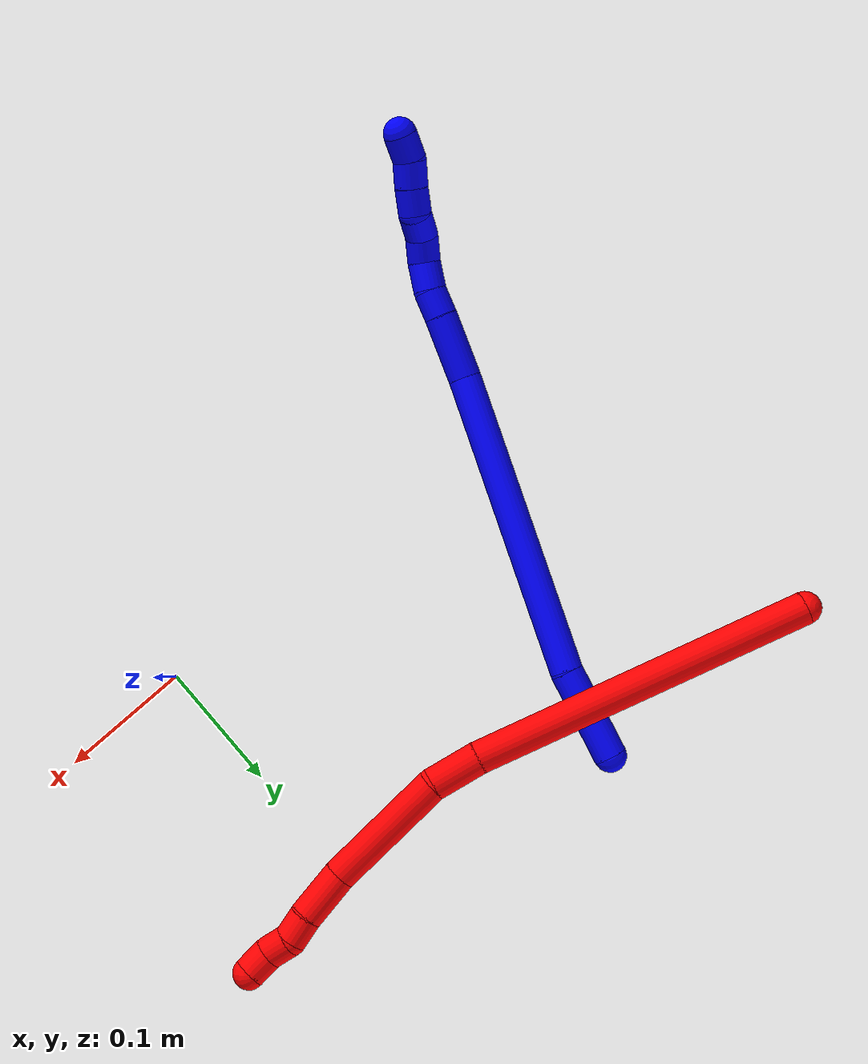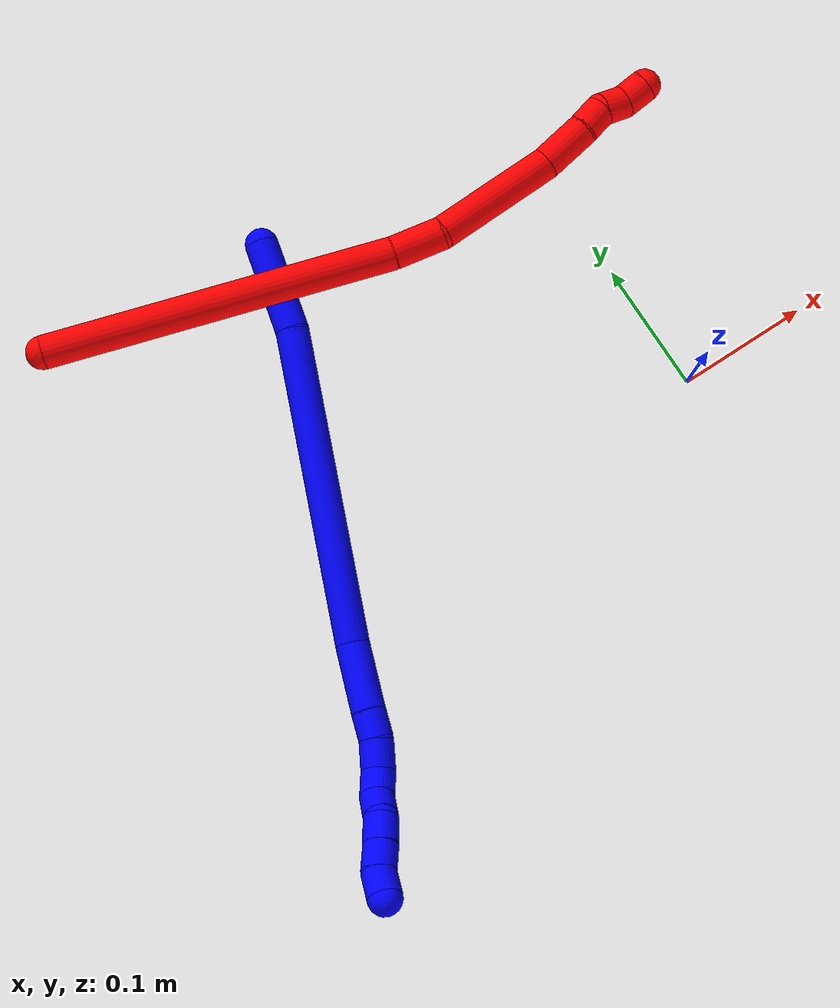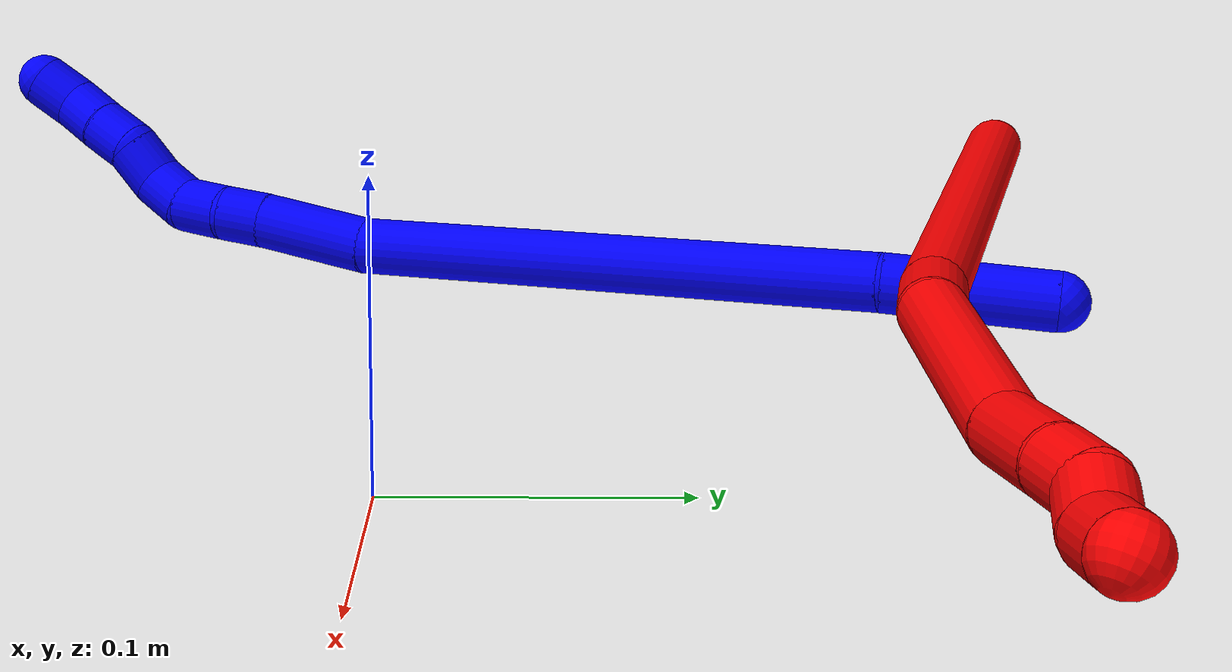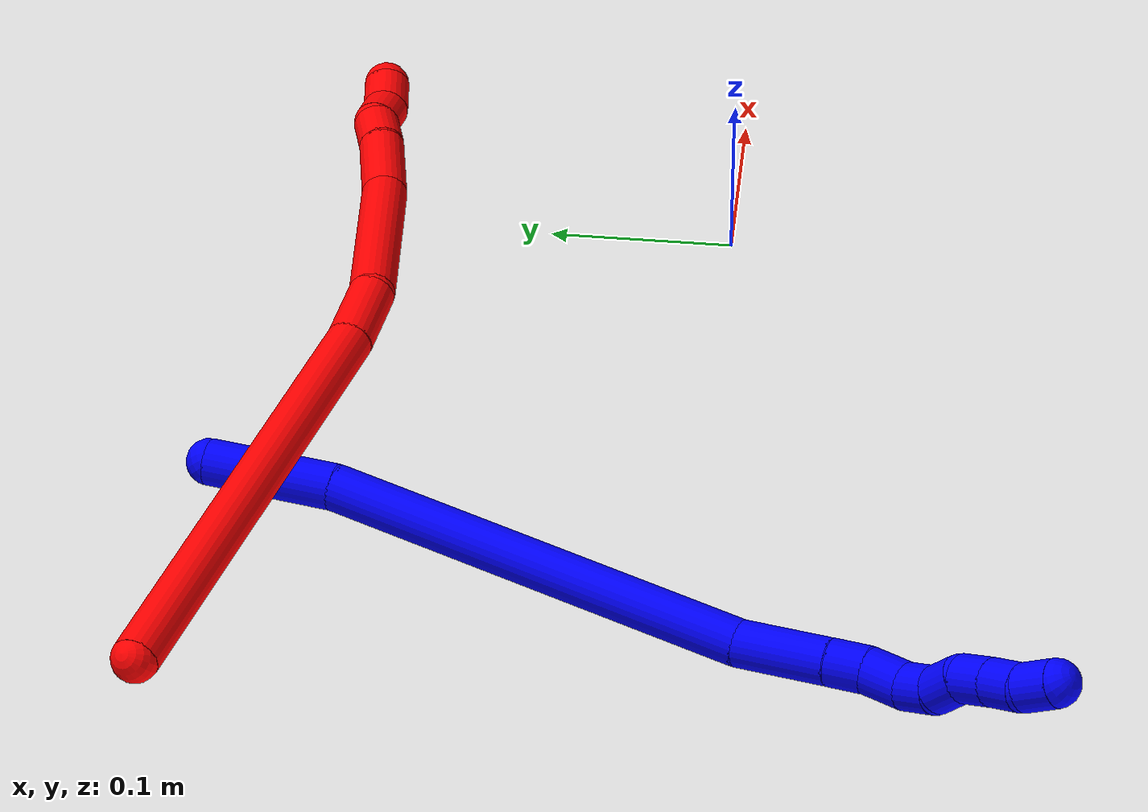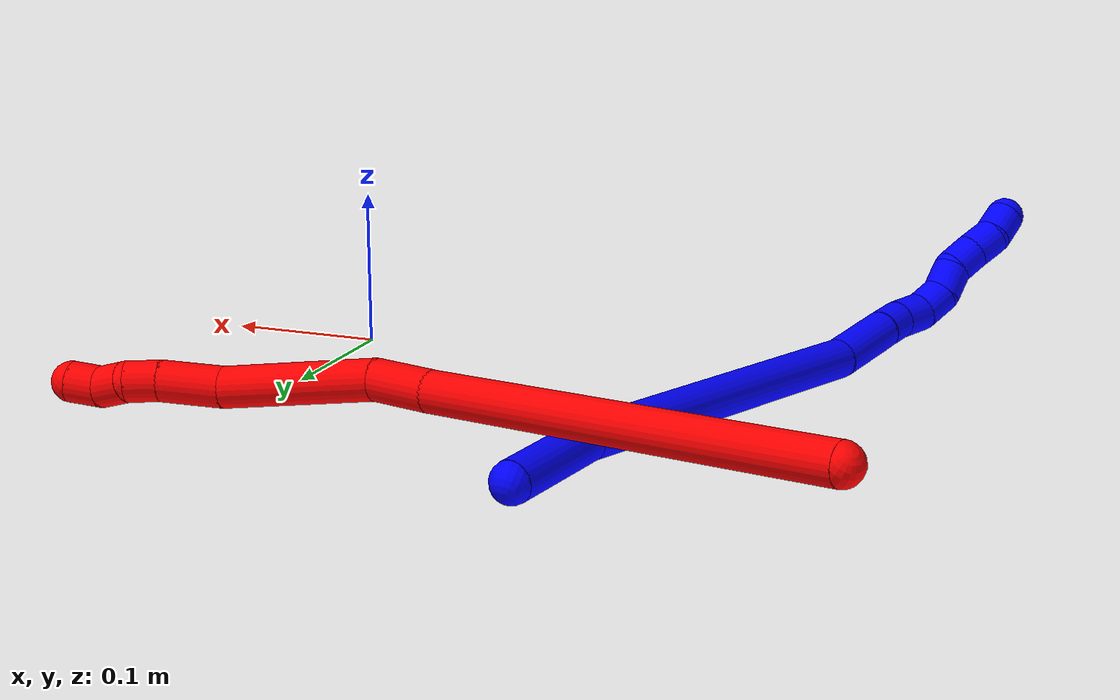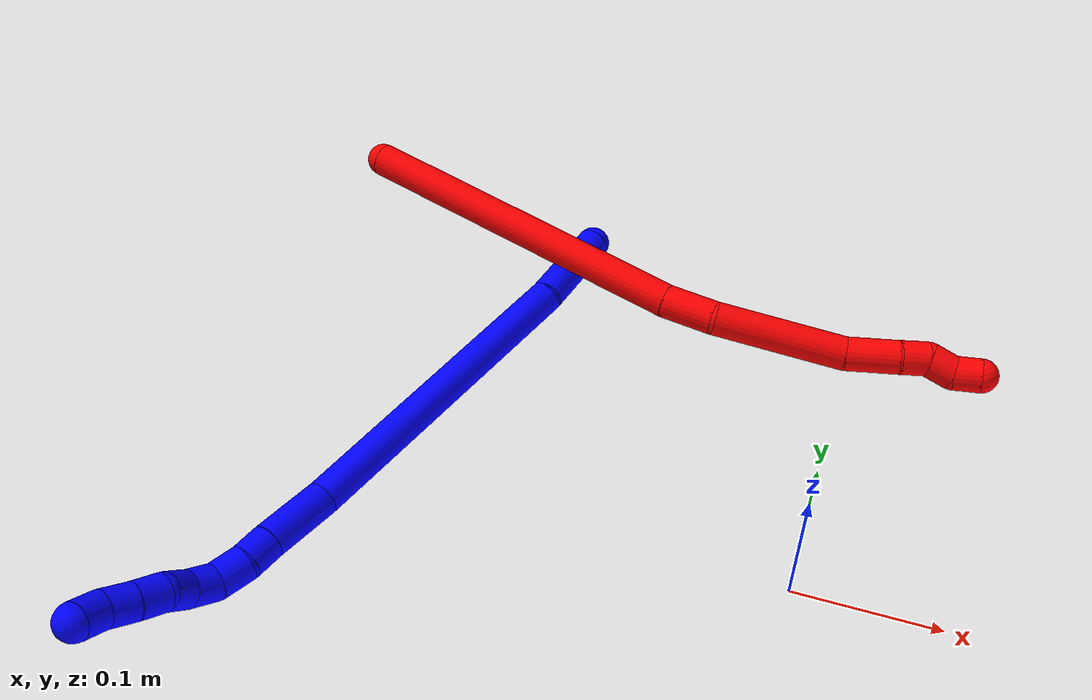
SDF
<sdf version="1.7">
 <world name="default">
  <plugin name="TubeGeneratorPlugin" filename="libtube_generator_plugin.so"/>
  <model name="photoneo_s_sensor">
   <static>1</static>
   <pose>0 0 2 1.57079 1.57079 3.14159</pose>
   <link name="link">
    <inertial><mass>0.1</mass></inertial>
    <sensor name="sensor" type="depth">
     <update_rate>30</update_rate>
     <camera>
      <horizontal_fov>1.22</horizontal_fov>
      <image><width>1920</width><height>1200</height><format>B8G8R8</format></image>
      <clip><near>0.1</near><far>4</far></clip>
      <depth_camera><output>points</output></depth_camera>
     </camera>
     <plugin name="camera_plugin" filename="libgazebo_ros_depth_camera.so">
      <baseline>0.2</baseline>
      <alwaysOn>1</alwaysOn>
      <updateRate>0.0</updateRate>
      <cameraName>camera_ir</cameraName>
      <imageTopicName>/camera/color/image_raw</imageTopicName>
      <cameraInfoTopicName>/camera/color/camera_info</cameraInfoTopicName>
      <depthImageTopicName>/camera/depth/image_raw</depthImageTopicName>
      <depthImageCameraInfoTopicName>/camera/depth/camera_info</depthImageCameraInfoTopicName>
      <pointCloudTopicName>/camera/depth/points</pointCloudTopicName>
      <frameName>fr_optical</frameName>
      <pointCloudCutoff>0.1</pointCloudCutoff>
      <pointCloudCutoffMax>2.0</pointCloudCutoffMax>
      <distortionK1>0</distortionK1>
      <distortionK2>0</distortionK2>
      <distortionK3>0</distortionK3>
      <distortionT1>0</distortionT1>
      <distortionT2>0</distortionT2>
      <CxPrime>0</CxPrime>
      <Cx>0</Cx>
      <Cy>0</Cy>
      <focalLength>0</focalLength>
      <hackBaseline>0</hackBaseline>
     </plugin>
    </sensor>
   </link>
  </model>
  <gravity>0 0 -9.8</gravity>
  <magnetic_field>6e-06 2.3e-05 -4.2e-05</magnetic_field>
  <atmosphere type="adiabatic"/>
  <physics name="default_physics" default="0" type="ode">
   <max_step_size>0.003</max_step_size>
   <real_time_factor>1</real_time_factor>
   <real_time_update_rate>1000</real_time_update_rate>
   <max_contacts>10000</max_contacts>
   <ode>
    <solver>
     <type>quick</type>
     <iters>100</iters>
     <sor>1.3</sor>
     <use_dynamic_moi_rescaling>0</use_dynamic_moi_rescaling>
    </solver>
    <constraints>
     <contact_max_correcting_vel>0</contact_max_correcting_vel>
     <contact_surface_layer>0.001</contact_surface_layer>
     <cfm>0</cfm>
     <erp>0.2</erp>
    </constraints>
   </ode>
  </physics>
  <scene><ambient>0.4 0.4 0.4 1</ambient><background>0.7 0.7 0.7 1</background><shadows>0</shadows></scene>
  <audio><device>default</device></audio>
  <spherical_coordinates>
   <surface_model>EARTH_WGS84</surface_model>
   <latitude_deg>0</latitude_deg>
   <longitude_deg>0</longitude_deg>
   <elevation>0</elevation>
   <heading_deg>0</heading_deg>
  </spherical_coordinates>
  <model name="bin">
   <static>1</static>
   <link name="bottom">
    <collision name="collision-bottom">
     <pose>0 0 -0.01 0 -0 0</pose>
     <geometry><box><size>0.8 0.6 0.02</size></box></geometry>
     <surface>
      <friction><ode><mu>100</mu><mu2>100</mu2></ode></friction>
      <contact><collide_bitmask>65535</collide_bitmask></contact>
     </surface>
    </collision>
   </link>
   <link name="west_wall">
    <collision name="collision-west_wall">
     <pose>-0.41 0 0.1 0 -0 0</pose>
     <geometry><box><size>0.02 0.6 0.2</size></box></geometry>
     <surface>
      <friction><ode><mu>100</mu><mu2>100</mu2></ode></friction>
      <contact><collide_bitmask>65535</collide_bitmask></contact>
     </surface>
    </collision>
   </link>
   <link name="east_wall">
    <collision name="collision-east_wall">
     <pose>0.41 0 0.1 0 -0 0</pose>
     <geometry><box><size>0.02 0.6 0.2</size></box></geometry>
     <surface>
      <friction><ode><mu>100</mu><mu2>100</mu2></ode></friction>
      <contact><collide_bitmask>65535</collide_bitmask></contact>
     </surface>
    </collision>
   </link>
   <link name="south_wall">
    <collision name="collision-south_wall">
     <pose>0 -0.31 0.1 0 -0 0</pose>
     <geometry><box><size>0.8 0.02 0.2</size></box></geometry>
     <surface>
      <friction><ode><mu>100</mu><mu2>100</mu2></ode></friction>
      <contact><collide_bitmask>65535</collide_bitmask></contact>
     </surface>
    </collision>
   </link>
   <link name="north_wall">
    <collision name="collision-north_wall">
     <pose>0 0.31 0.1 0 -0 0</pose>
     <geometry><box><size>0.8 0.02 0.2</size></box></geometry>
     <surface>
      <friction><ode><mu>100</mu><mu2>100</mu2></ode></friction>
      <contact><collide_bitmask>65535</collide_bitmask></contact>
     </surface>
    </collision>
   </link>
  </model>
  <model name="1">
   <static>0</static>
   <link name="1">
    <collision name="collision-cylinder-e_1_1_4">
     <pose>0.000786 -0.024437 -0.025788 2.38309 0.022121 0.055491</pose>
     <geometry><cylinder><radius>0.0125</radius><length>0.071072</length></cylinder></geometry>
     <surface>
      <friction><ode><mu>1.16</mu><mu2>1.16</mu2><slip1>0</slip1><slip2>0</slip2></ode></friction>
      <contact><ode><kp>1e+06</kp><kd>1</kd><max_vel>0</max_vel><min_depth>0.001</min_depth></ode></contact>
     </surface>
    </collision>
    <visual name="visual-cylinder-e_1_1_4">
     <pose>0.000786 -0.024437 -0.025788 2.38309 0.022121 0.055491</pose>
     <geometry><cylinder><radius>0.0125</radius><length>0.071072</length></cylinder></geometry>
     <material><ambient>0 0 1 1</ambient></material>
    </visual>
    <collision name="collision-cylinder-e_2_4_5">
     <pose>0.021204 -0.134877 -0.129325 2.30583 0.167741 0.374224</pose>
     <geometry><cylinder><radius>0.0125</radius><length>0.235175</length></cylinder></geometry>
     <surface>
      <friction><ode><mu>1.16</mu><mu2>1.16</mu2><slip1>0</slip1><slip2>0</slip2></ode></friction>
      <contact><ode><kp>1e+06</kp><kd>1</kd><max_vel>0</max_vel><min_depth>0.001</min_depth></ode></contact>
     </surface>
    </collision>
    <visual name="visual-cylinder-e_2_4_5">
     <pose>0.021204 -0.134877 -0.129325 2.30583 0.167741 0.374224</pose>
     <geometry><cylinder><radius>0.0125</radius><length>0.235175</length></cylinder></geometry>
     <material><ambient>0 0 1 1</ambient></material>
    </visual>
    <collision name="collision-cylinder-e_3_5_6">
     <pose>0.043987 -0.236104 -0.226917 2.48718 0.125336 0.365634</pose>
     <geometry><cylinder><radius>0.0125</radius><length>0.050417</length></cylinder></geometry>
     <surface>
      <friction><ode><mu>1.16</mu><mu2>1.16</mu2><slip1>0</slip1><slip2>0</slip2></ode></friction>
      <contact><ode><kp>1e+06</kp><kd>1</kd><max_vel>0</max_vel><min_depth>0.001</min_depth></ode></contact>
     </surface>
    </collision>
    <visual name="visual-cylinder-e_3_5_6">
     <pose>0.043987 -0.236104 -0.226917 2.48718 0.125336 0.365634</pose>
     <geometry><cylinder><radius>0.0125</radius><length>0.050417</length></cylinder></geometry>
     <material><ambient>0 0 1 1</ambient></material>
    </visual>
    <collision name="collision-cylinder-e_4_6_7">
     <pose>0.048046 -0.257872 -0.254559 2.44336 0.088951 0.243305</pose>
     <geometry><cylinder><radius>0.0125</radius><length>0.020442</length></cylinder></geometry>
     <surface>
      <friction><ode><mu>1.16</mu><mu2>1.16</mu2><slip1>0</slip1><slip2>0</slip2></ode></friction>
      <contact><ode><kp>1e+06</kp><kd>1</kd><max_vel>0</max_vel><min_depth>0.001</min_depth></ode></contact>
     </surface>
    </collision>
    <visual name="visual-cylinder-e_4_6_7">
     <pose>0.048046 -0.257872 -0.254559 2.44336 0.088951 0.243305</pose>
     <geometry><cylinder><radius>0.0125</radius><length>0.020442</length></cylinder></geometry>
     <material><ambient>0 0 1 1</ambient></material>
    </visual>
    <collision name="collision-cylinder-e_5_7_8">
     <pose>0.052239 -0.271746 -0.270371 2.40081 0.293779 0.728078</pose>
     <geometry><cylinder><radius>0.0125</radius><length>0.022691</length></cylinder></geometry>
     <surface>
      <friction><ode><mu>1.16</mu><mu2>1.16</mu2><slip1>0</slip1><slip2>0</slip2></ode></friction>
      <contact><ode><kp>1e+06</kp><kd>1</kd><max_vel>0</max_vel><min_depth>0.001</min_depth></ode></contact>
     </surface>
    </collision>
    <visual name="visual-cylinder-e_5_7_8">
     <pose>0.052239 -0.271746 -0.270371 2.40081 0.293779 0.728078</pose>
     <geometry><cylinder><radius>0.0125</radius><length>0.022691</length></cylinder></geometry>
     <material><ambient>0 0 1 1</ambient></material>
    </visual>
    <collision name="collision-cylinder-e_6_8_9">
     <pose>0.059128 -0.281945 -0.287337 2.83132 0.36595 1.73824</pose>
     <geometry><cylinder><radius>0.0125</radius><length>0.020136</length></cylinder></geometry>
     <surface>
      <friction><ode><mu>1.16</mu><mu2>1.16</mu2><slip1>0</slip1><slip2>0</slip2></ode></friction>
      <contact><ode><kp>1e+06</kp><kd>1</kd><max_vel>0</max_vel><min_depth>0.001</min_depth></ode></contact>
     </surface>
    </collision>
    <visual name="visual-cylinder-e_6_8_9">
     <pose>0.059128 -0.281945 -0.287337 2.83132 0.36595 1.73824</pose>
     <geometry><cylinder><radius>0.0125</radius><length>0.020136</length></cylinder></geometry>
     <material><ambient>0 0 1 1</ambient></material>
    </visual>
    <collision name="collision-cylinder-e_7_9_10">
     <pose>0.063939 -0.284505 -0.306234 -3.11041 0.120909 -2.63734</pose>
     <geometry><cylinder><radius>0.0125</radius><length>0.020045</length></cylinder></geometry>
     <surface>
      <friction><ode><mu>1.16</mu><mu2>1.16</mu2><slip1>0</slip1><slip2>0</slip2></ode></friction>
      <contact><ode><kp>1e+06</kp><kd>1</kd><max_vel>0</max_vel><min_depth>0.001</min_depth></ode></contact>
     </surface>
    </collision>
    <visual name="visual-cylinder-e_7_9_10">
     <pose>0.063939 -0.284505 -0.306234 -3.11041 0.120909 -2.63734</pose>
     <geometry><cylinder><radius>0.0125</radius><length>0.020045</length></cylinder></geometry>
     <material><ambient>0 0 1 1</ambient></material>
    </visual>
    <collision name="collision-cylinder-e_8_10_11">
     <pose>0.068379 -0.287382 -0.325095 2.79827 0.328817 1.52683</pose>
     <geometry><cylinder><radius>0.0125</radius><length>0.02001</length></cylinder></geometry>
     <surface>
      <friction><ode><mu>1.16</mu><mu2>1.16</mu2><slip1>0</slip1><slip2>0</slip2></ode></friction>
      <contact><ode><kp>1e+06</kp><kd>1</kd><max_vel>0</max_vel><min_depth>0.001</min_depth></ode></contact>
     </surface>
    </collision>
    <visual name="visual-cylinder-e_8_10_11">
     <pose>0.068379 -0.287382 -0.325095 2.79827 0.328817 1.52683</pose>
     <geometry><cylinder><radius>0.0125</radius><length>0.02001</length></cylinder></geometry>
     <material><ambient>0 0 1 1</ambient></material>
    </visual>
    <collision name="collision-cylinder-e_9_11_12">
     <pose>0.075518 -0.293579 -0.342717 2.80884 0.401319 1.76126</pose>
     <geometry><cylinder><radius>0.0125</radius><length>0.020012</length></cylinder></geometry>
     <surface>
      <friction><ode><mu>1.16</mu><mu2>1.16</mu2><slip1>0</slip1><slip2>0</slip2></ode></friction>
      <contact><ode><kp>1e+06</kp><kd>1</kd><max_vel>0</max_vel><min_depth>0.001</min_depth></ode></contact>
     </surface>
    </collision>
    <visual name="visual-cylinder-e_9_11_12">
     <pose>0.075518 -0.293579 -0.342717 2.80884 0.401319 1.76126</pose>
     <geometry><cylinder><radius>0.0125</radius><length>0.020012</length></cylinder></geometry>
     <material><ambient>0 0 1 1</ambient></material>
    </visual>
    <collision name="collision-cylinder-e_10_12_2">
     <pose>0.080423 -0.299172 -0.361031 2.87885 0.099741 0.72234</pose>
     <geometry><cylinder><radius>0.0125</radius><length>0.02</length></cylinder></geometry>
     <surface>
      <friction><ode><mu>1.16</mu><mu2>1.16</mu2><slip1>0</slip1><slip2>0</slip2></ode></friction>
      <contact><ode><kp>1e+06</kp><kd>1</kd><max_vel>0</max_vel><min_depth>0.001</min_depth></ode></contact>
     </surface>
    </collision>
    <visual name="visual-cylinder-e_10_12_2">
     <pose>0.080423 -0.299172 -0.361031 2.87885 0.099741 0.72234</pose>
     <geometry><cylinder><radius>0.0125</radius><length>0.02</length></cylinder></geometry>
     <material><ambient>0 0 1 1</ambient></material>
    </visual>
    <collision name="collision-sphere-2">
     <pose>0.081419 -0.301756 -0.37064 0 -0 0</pose>
     <geometry><sphere><radius>0.0125</radius></sphere></geometry>
     <surface>
      <friction><ode><mu>1.16</mu><mu2>1.16</mu2><slip1>0</slip1><slip2>0</slip2></ode></friction>
      <contact><ode><kp>1e+06</kp><kd>1</kd><max_vel>0</max_vel><min_depth>0.001</min_depth></ode></contact>
     </surface>
    </collision>
    <visual name="visual-sphere-2">
     <pose>0.081419 -0.301756 -0.37064 0 -0 0</pose>
     <geometry><sphere><radius>0.0125</radius></sphere></geometry>
     <material><ambient>0 0 1 1</ambient></material>
    </visual>
    <collision name="collision-sphere-12">
     <pose>0.079427 -0.296587 -0.351422 0 -0 0</pose>
     <geometry><sphere><radius>0.0125</radius></sphere></geometry>
     <surface>
      <friction><ode><mu>1.16</mu><mu2>1.16</mu2><slip1>0</slip1><slip2>0</slip2></ode></friction>
      <contact><ode><kp>1e+06</kp><kd>1</kd><max_vel>0</max_vel><min_depth>0.001</min_depth></ode></contact>
     </surface>
    </collision>
    <visual name="visual-sphere-12">
     <pose>0.079427 -0.296587 -0.351422 0 -0 0</pose>
     <geometry><sphere><radius>0.0125</radius></sphere></geometry>
     <material><ambient>0 0 1 1</ambient></material>
    </visual>
    <collision name="collision-sphere-11">
     <pose>0.07161 -0.29057 -0.334011 0 -0 0</pose>
     <geometry><sphere><radius>0.0125</radius></sphere></geometry>
     <surface>
      <friction><ode><mu>1.16</mu><mu2>1.16</mu2><slip1>0</slip1><slip2>0</slip2></ode></friction>
      <contact><ode><kp>1e+06</kp><kd>1</kd><max_vel>0</max_vel><min_depth>0.001</min_depth></ode></contact>
     </surface>
    </collision>
    <visual name="visual-sphere-11">
     <pose>0.07161 -0.29057 -0.334011 0 -0 0</pose>
     <geometry><sphere><radius>0.0125</radius></sphere></geometry>
     <material><ambient>0 0 1 1</ambient></material>
    </visual>
    <collision name="collision-sphere-10">
     <pose>0.065148 -0.284195 -0.316178 0 -0 0</pose>
     <geometry><sphere><radius>0.0125</radius></sphere></geometry>
     <surface>
      <friction><ode><mu>1.16</mu><mu2>1.16</mu2><slip1>0</slip1><slip2>0</slip2></ode></friction>
      <contact><ode><kp>1e+06</kp><kd>1</kd><max_vel>0</max_vel><min_depth>0.001</min_depth></ode></contact>
     </surface>
    </collision>
    <visual name="visual-sphere-10">
     <pose>0.065148 -0.284195 -0.316178 0 -0 0</pose>
     <geometry><sphere><radius>0.0125</radius></sphere></geometry>
     <material><ambient>0 0 1 1</ambient></material>
    </visual>
    <collision name="collision-sphere-9">
     <pose>0.06273 -0.284815 -0.296289 0 -0 0</pose>
     <geometry><sphere><radius>0.0125</radius></sphere></geometry>
     <surface>
      <friction><ode><mu>1.16</mu><mu2>1.16</mu2><slip1>0</slip1><slip2>0</slip2></ode></friction>
      <contact><ode><kp>1e+06</kp><kd>1</kd><max_vel>0</max_vel><min_depth>0.001</min_depth></ode></contact>
     </surface>
    </collision>
    <visual name="visual-sphere-9">
     <pose>0.06273 -0.284815 -0.296289 0 -0 0</pose>
     <geometry><sphere><radius>0.0125</radius></sphere></geometry>
     <material><ambient>0 0 1 1</ambient></material>
    </visual>
    <collision name="collision-sphere-4">
     <pose>0.001572 -0.048874 -0.051576 0 -0 0</pose>
     <geometry><sphere><radius>0.0125</radius></sphere></geometry>
     <surface>
      <friction><ode><mu>1.16</mu><mu2>1.16</mu2><slip1>0</slip1><slip2>0</slip2></ode></friction>
      <contact><ode><kp>1e+06</kp><kd>1</kd><max_vel>0</max_vel><min_depth>0.001</min_depth></ode></contact>
     </surface>
    </collision>
    <visual name="visual-sphere-4">
     <pose>0.001572 -0.048874 -0.051576 0 -0 0</pose>
     <geometry><sphere><radius>0.0125</radius></sphere></geometry>
     <material><ambient>0 0 1 1</ambient></material>
    </visual>
    <collision name="collision-sphere-1">
     <geometry><sphere><radius>0.0125</radius></sphere></geometry>
     <surface>
      <friction><ode><mu>1.16</mu><mu2>1.16</mu2><slip1>0</slip1><slip2>0</slip2></ode></friction>
      <contact><ode><kp>1e+06</kp><kd>1</kd><max_vel>0</max_vel><min_depth>0.001</min_depth></ode></contact>
     </surface>
    </collision>
    <visual name="visual-sphere-1">
     <geometry><sphere><radius>0.0125</radius></sphere></geometry>
     <material><ambient>0 0 1 1</ambient></material>
    </visual>
    <collision name="collision-sphere-8">
     <pose>0.055525 -0.279075 -0.278384 0 -0 0</pose>
     <geometry><sphere><radius>0.0125</radius></sphere></geometry>
     <surface>
      <friction><ode><mu>1.16</mu><mu2>1.16</mu2><slip1>0</slip1><slip2>0</slip2></ode></friction>
      <contact><ode><kp>1e+06</kp><kd>1</kd><max_vel>0</max_vel><min_depth>0.001</min_depth></ode></contact>
     </surface>
    </collision>
    <visual name="visual-sphere-8">
     <pose>0.055525 -0.279075 -0.278384 0 -0 0</pose>
     <geometry><sphere><radius>0.0125</radius></sphere></geometry>
     <material><ambient>0 0 1 1</ambient></material>
    </visual>
    <collision name="collision-sphere-5">
     <pose>0.040836 -0.22088 -0.207074 0 -0 0</pose>
     <geometry><sphere><radius>0.0125</radius></sphere></geometry>
     <surface>
      <friction><ode><mu>1.16</mu><mu2>1.16</mu2><slip1>0</slip1><slip2>0</slip2></ode></friction>
      <contact><ode><kp>1e+06</kp><kd>1</kd><max_vel>0</max_vel><min_depth>0.001</min_depth></ode></contact>
     </surface>
    </collision>
    <visual name="visual-sphere-5">
     <pose>0.040836 -0.22088 -0.207074 0 -0 0</pose>
     <geometry><sphere><radius>0.0125</radius></sphere></geometry>
     <material><ambient>0 0 1 1</ambient></material>
    </visual>
    <collision name="collision-sphere-6">
     <pose>0.047138 -0.251328 -0.246761 0 -0 0</pose>
     <geometry><sphere><radius>0.0125</radius></sphere></geometry>
     <surface>
      <friction><ode><mu>1.16</mu><mu2>1.16</mu2><slip1>0</slip1><slip2>0</slip2></ode></friction>
      <contact><ode><kp>1e+06</kp><kd>1</kd><max_vel>0</max_vel><min_depth>0.001</min_depth></ode></contact>
     </surface>
    </collision>
    <visual name="visual-sphere-6">
     <pose>0.047138 -0.251328 -0.246761 0 -0 0</pose>
     <geometry><sphere><radius>0.0125</radius></sphere></geometry>
     <material><ambient>0 0 1 1</ambient></material>
    </visual>
    <collision name="collision-sphere-7">
     <pose>0.048954 -0.264417 -0.262357 0 -0 0</pose>
     <geometry><sphere><radius>0.0125</radius></sphere></geometry>
     <surface>
      <friction><ode><mu>1.16</mu><mu2>1.16</mu2><slip1>0</slip1><slip2>0</slip2></ode></friction>
      <contact><ode><kp>1e+06</kp><kd>1</kd><max_vel>0</max_vel><min_depth>0.001</min_depth></ode></contact>
     </surface>
    </collision>
    <visual name="visual-sphere-7">
     <pose>0.048954 -0.264417 -0.262357 0 -0 0</pose>
     <geometry><sphere><radius>0.0125</radius></sphere></geometry>
     <material><ambient>0 0 1 1</ambient></material>
    </visual>
    <inertial>
     <pose>0.032776 -0.171574 -0.175069 0 -0 0</pose>
     <mass>0.5</mass>
     <inertia>
      <ixx>0.001462</ixx>
      <ixy>0</ixy>
      <ixz>0</ixz>
      <iyy>-0.000284</iyy>
      <iyz>0</iyz>
      <izz>0.000617</izz>
     </inertia>
    </inertial>
   </link>
   <pose>-0.210349 0.25853 0.012444 2.38385 -0.040426 2.92902</pose>
  </model>
  <model name="2">
   <static>0</static>
   <link name="2">
    <collision name="collision-cylinder-e_1_1_4">
     <pose>0.102375 -0.005809 -0.082863 3.07161 0.889148 2.99489</pose>
     <geometry><cylinder><radius>0.0125</radius><length>0.26367</length></cylinder></geometry>
     <surface>
      <friction><ode><mu>1.16</mu><mu2>1.16</mu2><slip1>0</slip1><slip2>0</slip2></ode></friction>
      <contact><ode><kp>1e+06</kp><kd>1</kd><max_vel>0</max_vel><min_depth>0.001</min_depth></ode></contact>
     </surface>
    </collision>
    <visual name="visual-cylinder-e_1_1_4">
     <pose>0.102375 -0.005809 -0.082863 3.07161 0.889148 2.99489</pose>
     <geometry><cylinder><radius>0.0125</radius><length>0.26367</length></cylinder></geometry>
     <material><ambient>1 0 0 1</ambient></material>
    </visual>
    <collision name="collision-cylinder-e_2_4_5">
     <pose>0.220999 -0.01126 -0.176314 -3.10784 0.993014 -3.0793</pose>
     <geometry><cylinder><radius>0.0125</radius><length>0.038797</length></cylinder></geometry>
     <surface>
      <friction><ode><mu>1.16</mu><mu2>1.16</mu2><slip1>0</slip1><slip2>0</slip2></ode></friction>
      <contact><ode><kp>1e+06</kp><kd>1</kd><max_vel>0</max_vel><min_depth>0.001</min_depth></ode></contact>
     </surface>
    </collision>
    <visual name="visual-cylinder-e_2_4_5">
     <pose>0.220999 -0.01126 -0.176314 -3.10784 0.993014 -3.0793</pose>
     <geometry><cylinder><radius>0.0125</radius><length>0.038797</length></cylinder></geometry>
     <material><ambient>1 0 0 1</ambient></material>
    </visual>
    <collision name="collision-cylinder-e_3_5_6">
     <pose>0.274424 0.003808 -0.214537 -2.65245 0.870908 -2.15686</pose>
     <geometry><cylinder><radius>0.0125</radius><length>0.097202</length></cylinder></geometry>
     <surface>
      <friction><ode><mu>1.16</mu><mu2>1.16</mu2><slip1>0</slip1><slip2>0</slip2></ode></friction>
      <contact><ode><kp>1e+06</kp><kd>1</kd><max_vel>0</max_vel><min_depth>0.001</min_depth></ode></contact>
     </surface>
    </collision>
    <visual name="visual-cylinder-e_3_5_6">
     <pose>0.274424 0.003808 -0.214537 -2.65245 0.870908 -2.15686</pose>
     <geometry><cylinder><radius>0.0125</radius><length>0.097202</length></cylinder></geometry>
     <material><ambient>1 0 0 1</ambient></material>
    </visual>
    <collision name="collision-cylinder-e_4_6_7">
     <pose>0.328409 0.02493 -0.249699 -2.43599 1.03902 -1.99756</pose>
     <geometry><cylinder><radius>0.0125</radius><length>0.039006</length></cylinder></geometry>
     <surface>
      <friction><ode><mu>1.16</mu><mu2>1.16</mu2><slip1>0</slip1><slip2>0</slip2></ode></friction>
      <contact><ode><kp>1e+06</kp><kd>1</kd><max_vel>0</max_vel><min_depth>0.001</min_depth></ode></contact>
     </surface>
    </collision>
    <visual name="visual-cylinder-e_4_6_7">
     <pose>0.328409 0.02493 -0.249699 -2.43599 1.03902 -1.99756</pose>
     <geometry><cylinder><radius>0.0125</radius><length>0.039006</length></cylinder></geometry>
     <material><ambient>1 0 0 1</ambient></material>
    </visual>
    <collision name="collision-cylinder-e_5_7_8">
     <pose>0.353445 0.036039 -0.261388 -2.29584 0.919234 -1.66585</pose>
     <geometry><cylinder><radius>0.0125</radius><length>0.020691</length></cylinder></geometry>
     <surface>
      <friction><ode><mu>1.16</mu><mu2>1.16</mu2><slip1>0</slip1><slip2>0</slip2></ode></friction>
      <contact><ode><kp>1e+06</kp><kd>1</kd><max_vel>0</max_vel><min_depth>0.001</min_depth></ode></contact>
     </surface>
    </collision>
    <visual name="visual-cylinder-e_5_7_8">
     <pose>0.353445 0.036039 -0.261388 -2.29584 0.919234 -1.66585</pose>
     <geometry><cylinder><radius>0.0125</radius><length>0.020691</length></cylinder></geometry>
     <material><ambient>1 0 0 1</ambient></material>
    </visual>
    <collision name="collision-cylinder-e_6_8_9">
     <pose>0.368218 0.042598 -0.273234 -2.90373 0.691449 -2.50094</pose>
     <geometry><cylinder><radius>0.0125</radius><length>0.020534</length></cylinder></geometry>
     <surface>
      <friction><ode><mu>1.16</mu><mu2>1.16</mu2><slip1>0</slip1><slip2>0</slip2></ode></friction>
      <contact><ode><kp>1e+06</kp><kd>1</kd><max_vel>0</max_vel><min_depth>0.001</min_depth></ode></contact>
     </surface>
    </collision>
    <visual name="visual-cylinder-e_6_8_9">
     <pose>0.368218 0.042598 -0.273234 -2.90373 0.691449 -2.50094</pose>
     <geometry><cylinder><radius>0.0125</radius><length>0.020534</length></cylinder></geometry>
     <material><ambient>1 0 0 1</ambient></material>
    </visual>
    <collision name="collision-cylinder-e_7_9_2">
     <pose>0.383666 0.046915 -0.284889 -2.58789 1.08807 -2.26333</pose>
     <geometry><cylinder><radius>0.0125</radius><length>0.020101</length></cylinder></geometry>
     <surface>
      <friction><ode><mu>1.16</mu><mu2>1.16</mu2><slip1>0</slip1><slip2>0</slip2></ode></friction>
      <contact><ode><kp>1e+06</kp><kd>1</kd><max_vel>0</max_vel><min_depth>0.001</min_depth></ode></contact>
     </surface>
    </collision>
    <visual name="visual-cylinder-e_7_9_2">
     <pose>0.383666 0.046915 -0.284889 -2.58789 1.08807 -2.26333</pose>
     <geometry><cylinder><radius>0.0125</radius><length>0.020101</length></cylinder></geometry>
     <material><ambient>1 0 0 1</ambient></material>
    </visual>
    <collision name="collision-sphere-2">
     <pose>0.392568 0.049368 -0.288857 0 -0 0</pose>
     <geometry><sphere><radius>0.0125</radius></sphere></geometry>
     <surface>
      <friction><ode><mu>1.16</mu><mu2>1.16</mu2><slip1>0</slip1><slip2>0</slip2></ode></friction>
      <contact><ode><kp>1e+06</kp><kd>1</kd><max_vel>0</max_vel><min_depth>0.001</min_depth></ode></contact>
     </surface>
    </collision>
    <visual name="visual-sphere-2">
     <pose>0.392568 0.049368 -0.288857 0 -0 0</pose>
     <geometry><sphere><radius>0.0125</radius></sphere></geometry>
     <material><ambient>1 0 0 1</ambient></material>
    </visual>
    <collision name="collision-sphere-9">
     <pose>0.374764 0.044462 -0.280921 0 -0 0</pose>
     <geometry><sphere><radius>0.0125</radius></sphere></geometry>
     <surface>
      <friction><ode><mu>1.16</mu><mu2>1.16</mu2><slip1>0</slip1><slip2>0</slip2></ode></friction>
      <contact><ode><kp>1e+06</kp><kd>1</kd><max_vel>0</max_vel><min_depth>0.001</min_depth></ode></contact>
     </surface>
    </collision>
    <visual name="visual-sphere-9">
     <pose>0.374764 0.044462 -0.280921 0 -0 0</pose>
     <geometry><sphere><radius>0.0125</radius></sphere></geometry>
     <material><ambient>1 0 0 1</ambient></material>
    </visual>
    <collision name="collision-sphere-4">
     <pose>0.204749 -0.011617 -0.165725 0 -0 0</pose>
     <geometry><sphere><radius>0.0125</radius></sphere></geometry>
     <surface>
      <friction><ode><mu>1.16</mu><mu2>1.16</mu2><slip1>0</slip1><slip2>0</slip2></ode></friction>
      <contact><ode><kp>1e+06</kp><kd>1</kd><max_vel>0</max_vel><min_depth>0.001</min_depth></ode></contact>
     </surface>
    </collision>
    <visual name="visual-sphere-4">
     <pose>0.204749 -0.011617 -0.165725 0 -0 0</pose>
     <geometry><sphere><radius>0.0125</radius></sphere></geometry>
     <material><ambient>1 0 0 1</ambient></material>
    </visual>
    <collision name="collision-sphere-1">
     <geometry><sphere><radius>0.0125</radius></sphere></geometry>
     <surface>
      <friction><ode><mu>1.16</mu><mu2>1.16</mu2><slip1>0</slip1><slip2>0</slip2></ode></friction>
      <contact><ode><kp>1e+06</kp><kd>1</kd><max_vel>0</max_vel><min_depth>0.001</min_depth></ode></contact>
     </surface>
    </collision>
    <visual name="visual-sphere-1">
     <geometry><sphere><radius>0.0125</radius></sphere></geometry>
     <material><ambient>1 0 0 1</ambient></material>
    </visual>
    <collision name="collision-sphere-8">
     <pose>0.361671 0.040735 -0.265548 0 -0 0</pose>
     <geometry><sphere><radius>0.0125</radius></sphere></geometry>
     <surface>
      <friction><ode><mu>1.16</mu><mu2>1.16</mu2><slip1>0</slip1><slip2>0</slip2></ode></friction>
      <contact><ode><kp>1e+06</kp><kd>1</kd><max_vel>0</max_vel><min_depth>0.001</min_depth></ode></contact>
     </surface>
    </collision>
    <visual name="visual-sphere-8">
     <pose>0.361671 0.040735 -0.265548 0 -0 0</pose>
     <geometry><sphere><radius>0.0125</radius></sphere></geometry>
     <material><ambient>1 0 0 1</ambient></material>
    </visual>
    <collision name="collision-sphere-5">
     <pose>0.237248 -0.010902 -0.186902 0 -0 0</pose>
     <geometry><sphere><radius>0.0125</radius></sphere></geometry>
     <surface>
      <friction><ode><mu>1.16</mu><mu2>1.16</mu2><slip1>0</slip1><slip2>0</slip2></ode></friction>
      <contact><ode><kp>1e+06</kp><kd>1</kd><max_vel>0</max_vel><min_depth>0.001</min_depth></ode></contact>
     </surface>
    </collision>
    <visual name="visual-sphere-5">
     <pose>0.237248 -0.010902 -0.186902 0 -0 0</pose>
     <geometry><sphere><radius>0.0125</radius></sphere></geometry>
     <material><ambient>1 0 0 1</ambient></material>
    </visual>
    <collision name="collision-sphere-6">
     <pose>0.311599 0.018517 -0.242171 0 -0 0</pose>
     <geometry><sphere><radius>0.0125</radius></sphere></geometry>
     <surface>
      <friction><ode><mu>1.16</mu><mu2>1.16</mu2><slip1>0</slip1><slip2>0</slip2></ode></friction>
      <contact><ode><kp>1e+06</kp><kd>1</kd><max_vel>0</max_vel><min_depth>0.001</min_depth></ode></contact>
     </surface>
    </collision>
    <visual name="visual-sphere-6">
     <pose>0.311599 0.018517 -0.242171 0 -0 0</pose>
     <geometry><sphere><radius>0.0125</radius></sphere></geometry>
     <material><ambient>1 0 0 1</ambient></material>
    </visual>
    <collision name="collision-sphere-7">
     <pose>0.345218 0.031343 -0.257227 0 -0 0</pose>
     <geometry><sphere><radius>0.0125</radius></sphere></geometry>
     <surface>
      <friction><ode><mu>1.16</mu><mu2>1.16</mu2><slip1>0</slip1><slip2>0</slip2></ode></friction>
      <contact><ode><kp>1e+06</kp><kd>1</kd><max_vel>0</max_vel><min_depth>0.001</min_depth></ode></contact>
     </surface>
    </collision>
    <visual name="visual-sphere-7">
     <pose>0.345218 0.031343 -0.257227 0 -0 0</pose>
     <geometry><sphere><radius>0.0125</radius></sphere></geometry>
     <material><ambient>1 0 0 1</ambient></material>
    </visual>
    <inertial>
     <pose>0.195275 0.003875 -0.152054 0 -0 0</pose>
     <mass>0.5</mass>
     <inertia>
      <ixx>-0.00087</ixx>
      <ixy>0</ixy>
      <ixz>0</ixz>
      <iyy>0.001706</iyy>
      <iyz>0</iyz>
      <izz>-0.001253</izz>
     </inertia>
    </inertial>
   </link>
   <pose>-0.387732 0.266471 0.047198 -0.464253 -0.560379 0.047747</pose>
  </model>
 </world>
</sdf>
